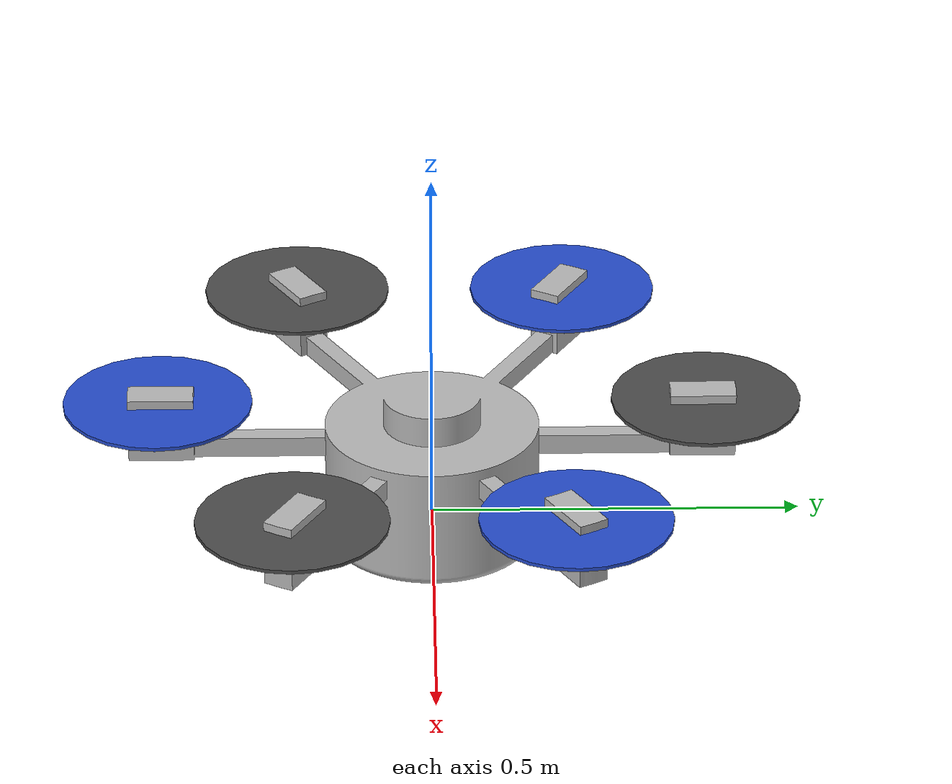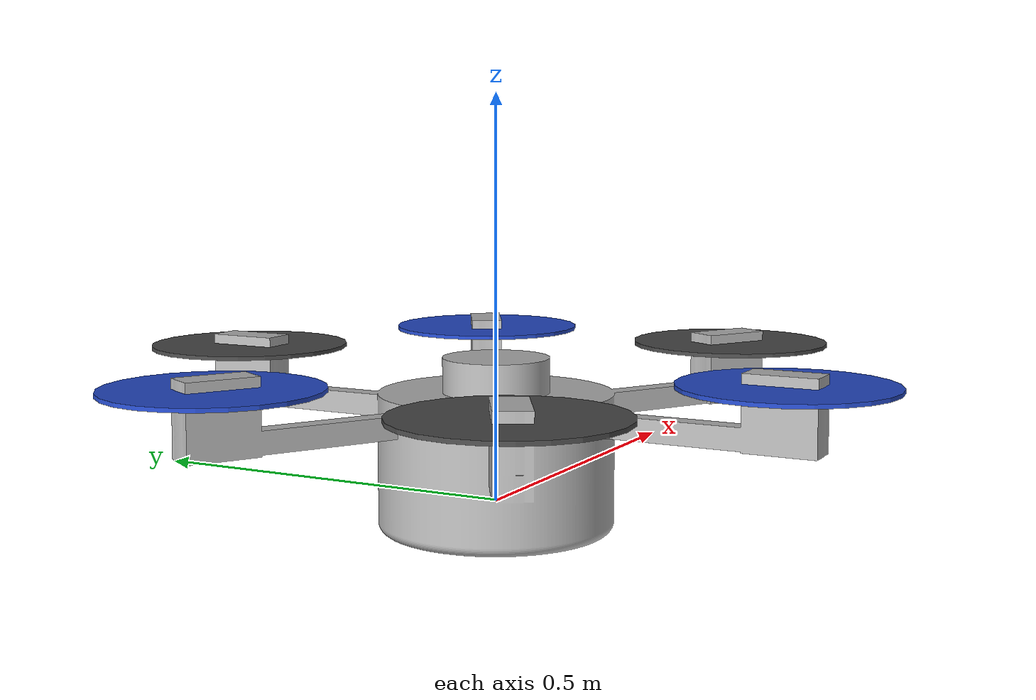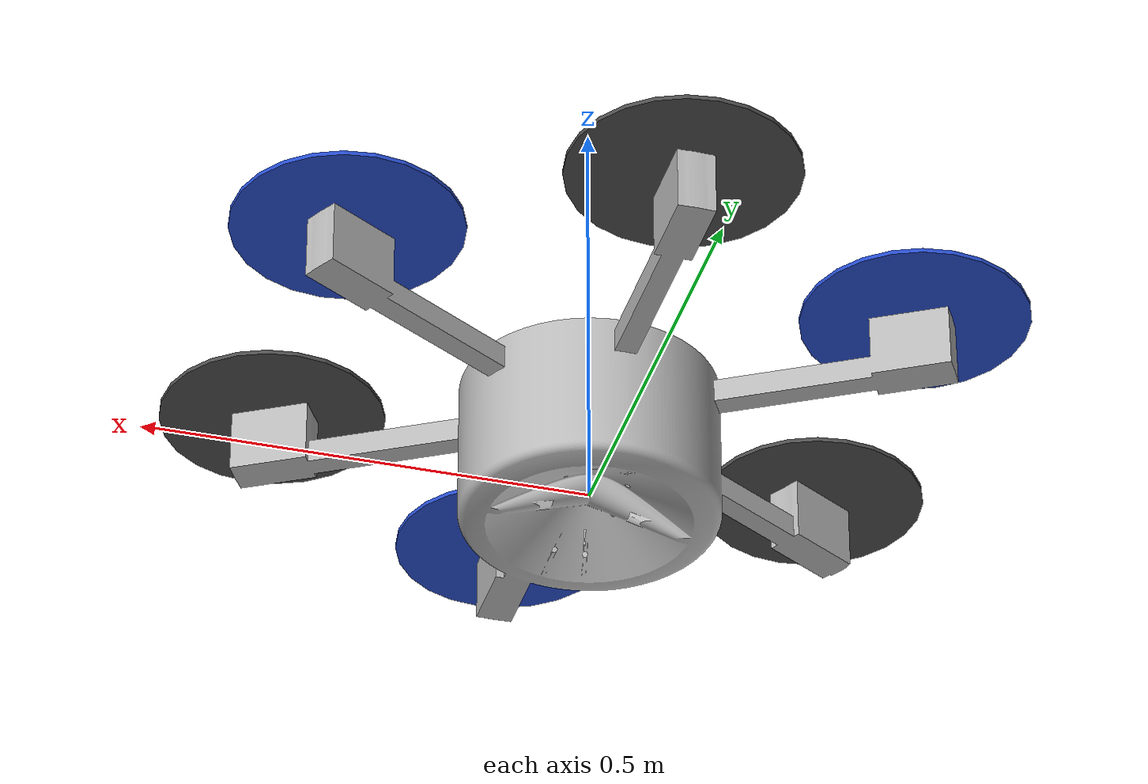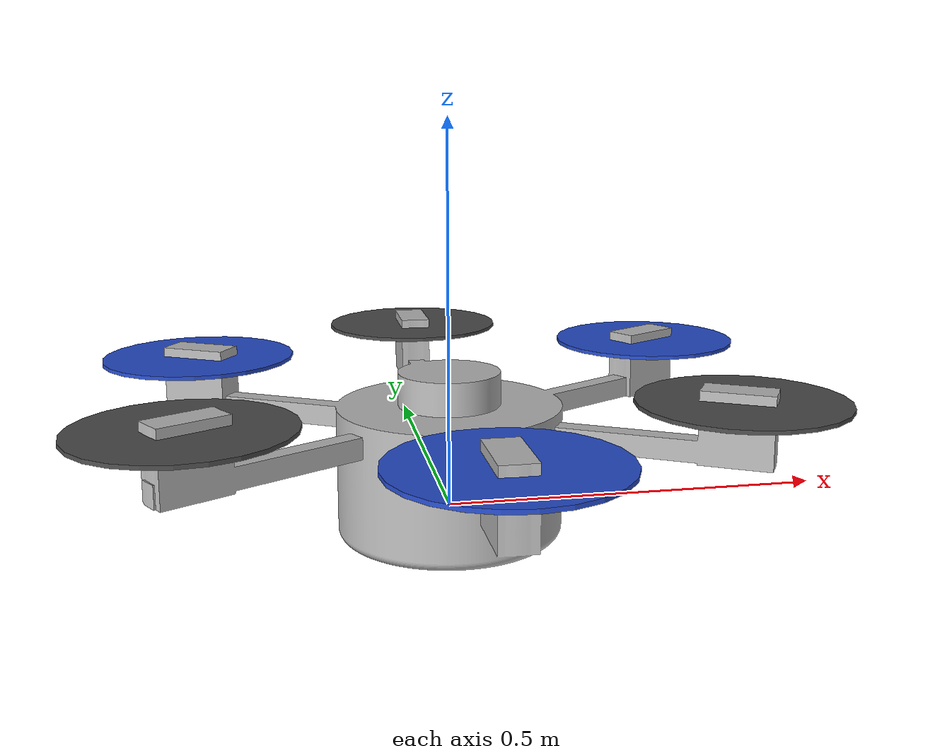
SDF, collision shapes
<?xml version='1.0'?>
<sdf version='1.6'>
  <model name='sdu_drone_mono_cam'>
    <!-- SDU Drone body -->
    <link name='base_link'>
      <pose>0 0 0 0 -0 0</pose>
      <inertial>
        <pose>0 0 0 0 -0 0</pose>
        <mass>1.5</mass>
        <inertia>
          <ixx>0.0762625</ixx>
          <ixy>0</ixy>
          <ixz>0</ixz>
          <iyy>0.0762625</iyy>
          <iyz>0</iyz>
          <izz>0.1369</izz>
        </inertia>
      </inertial>
      <collision name='base_link_inertia_collision'>
        <pose>0 0 -0.040 0 -0 0</pose>
        <geometry>
          <mesh>
            <scale>1 1 1</scale>
            <uri>model://sdu_description/meshes/sdu_drone_collision.dae</uri>
          </mesh>

        </geometry>
        <surface>
          <contact>
            <ode>
              <min_depth>0.001</min_depth>
              <max_vel>0</max_vel>
            </ode>
          </contact>
          <friction>
            <ode/>
          </friction>
        </surface>
      </collision>
      <visual name='base_link_inertia_visual'>
        <pose>0 0 0.125 0 0 0</pose>
        <geometry>
          <mesh>
            <scale>1 1 1</scale>
            <uri>model://sdu_description/meshes/sdu_drone.dae</uri>
          </mesh>
        </geometry>
      </visual>
      <gravity>1</gravity>
      <velocity_decay/>
    </link>
    <link name='/imu_link'>
      <pose>0 0 0 0 -0 0</pose>
      <inertial>
        <pose>0 0 0 0 -0 0</pose>
        <mass>0.015</mass>
        <inertia>
          <ixx>1e-05</ixx>
          <ixy>0</ixy>
          <ixz>0</ixz>
          <iyy>1e-05</iyy>
          <iyz>0</iyz>
          <izz>1e-05</izz>
        </inertia>
      </inertial>
    </link>
    <joint name='/imu_joint' type='revolute'>
      <child>/imu_link</child>
      <parent>base_link</parent>
      <axis>
        <xyz>1 0 0</xyz>
        <limit>
          <lower>0</lower>
          <upper>0</upper>
          <effort>0</effort>
          <velocity>0</velocity>
        </limit>
        <dynamics>
          <spring_reference>0</spring_reference>
          <spring_stiffness>0</spring_stiffness>
        </dynamics>
        <use_parent_model_frame>1</use_parent_model_frame>
      </axis>
    </joint>

    <!-- Rotor 0 (CW) -->
    <link name='rotor_0'>
      <pose>0.0 -0.37 0.170 0 -0 0</pose>
      <inertial>
        <pose>0 0 0 0 -0 0</pose>
        <mass>0.005</mass>
        <inertia>
          <ixx>9.75e-07</ixx>
          <ixy>0</ixy>
          <ixz>0</ixz>
          <iyy>0.000273104</iyy>
          <iyz>0</iyz>
          <izz>0.000274004</izz>
        </inertia>
      </inertial>
      <collision name='rotor_0_collision'>
        <pose>0 0 0 0 -0 0</pose>
        <geometry>
          <cylinder>
            <length>0.005</length>
            <radius>0.128</radius>
          </cylinder>
        </geometry>
        <surface>
          <contact>
            <ode/>
          </contact>
          <friction>
            <ode/>
          </friction>
        </surface>
      </collision>
      <visual name='rotor_0_visual'>
        <pose>0 0 0 0 -0 0</pose>
        <geometry>
          <mesh>
            <scale>1.5 1.5 1.5</scale>
            <uri>model://sdu_description/meshes/prop_cw.dae</uri>
          </mesh>
        </geometry>
        <material>
          <script>
            <name>Gazebo/Blue</name>
            <uri>file://media/materials/scripts/gazebo.material</uri>
          </script>
        </material>
      </visual>
      <gravity>1</gravity>
      <velocity_decay/>
    </link>
    <joint name='rotor_0_joint' type='revolute'>
      <child>rotor_0</child>
      <parent>base_link</parent>
      <axis>
        <xyz>0 0 1</xyz>
        <limit>
          <lower>-1e+16</lower>
          <upper>1e+16</upper>
        </limit>
        <dynamics>
          <spring_reference>0</spring_reference>
          <spring_stiffness>0</spring_stiffness>
        </dynamics>
        <use_parent_model_frame>1</use_parent_model_frame>
      </axis>
    </joint>

    <!-- Rotor 1 (CCW) -->
    <link name='rotor_1'>
      <pose>0 0.37 0.170 0 -0 0</pose>
      <inertial>
        <pose>0 0 0 0 -0 0</pose>
        <mass>0.005</mass>
        <inertia>
          <ixx>9.75e-07</ixx>
          <ixy>0</ixy>
          <ixz>0</ixz>
          <iyy>0.000273104</iyy>
          <iyz>0</iyz>
          <izz>0.000274004</izz>
        </inertia>
      </inertial>
      <collision name='rotor_1_collision'>
        <pose>0 0 0 0 -0 0</pose>
        <geometry>
          <cylinder>
            <length>0.005</length>
            <radius>0.128</radius>
          </cylinder>
        </geometry>
        <surface>
          <contact>
            <ode/>
          </contact>
          <friction>
            <ode/>
          </friction>
        </surface>
      </collision>
      <visual name='rotor_1_visual'>
        <pose>0 0 0 0 -0 0</pose>
        <geometry>
          <mesh>
            <scale>1.5 1.5 1.5</scale>
            <uri>model://sdu_description/meshes/prop_ccw.dae</uri>
          </mesh>
        </geometry>
        <material>
          <script>
            <name>Gazebo/DarkGrey</name>
            <uri>file://media/materials/scripts/gazebo.material</uri>
          </script>
        </material>
      </visual>
      <gravity>1</gravity>
      <velocity_decay/>
    </link>
    <joint name='rotor_1_joint' type='revolute'>
      <child>rotor_1</child>
      <parent>base_link</parent>
      <axis>
        <xyz>0 0 1</xyz>
        <limit>
          <lower>-1e+16</lower>
          <upper>1e+16</upper>
        </limit>
        <dynamics>
          <spring_reference>0</spring_reference>
          <spring_stiffness>0</spring_stiffness>
        </dynamics>
        <use_parent_model_frame>1</use_parent_model_frame>
      </axis>
    </joint>

    <!-- Rotor 2 (CW) -->
    <link name='rotor_2'>
      <pose>0.320429 0.185000 0.170 0 -0 0</pose>
      <inertial>
        <pose>0 0 0 0 -0 0</pose>
        <mass>0.005</mass>
        <inertia>
          <ixx>9.75e-07</ixx>
          <ixy>0</ixy>
          <ixz>0</ixz>
          <iyy>0.000273104</iyy>
          <iyz>0</iyz>
          <izz>0.000274004</izz>
        </inertia>
      </inertial>
      <collision name='rotor_2_collision'>
        <pose>0 0 0 0 -0 0</pose>
        <geometry>
          <cylinder>
            <length>0.005</length>
            <radius>0.128</radius>
          </cylinder>
        </geometry>
        <surface>
          <contact>
            <ode/>
          </contact>
          <friction>
            <ode/>
          </friction>
        </surface>
      </collision>
      <visual name='rotor_2_visual'>
        <pose>0 0 0 0 -0 0</pose>
        <geometry>
          <mesh>
            <scale>1.5 1.5 1.5</scale>
            <uri>model://sdu_description/meshes/prop_cw.dae</uri>
          </mesh>
        </geometry>
        <material>
          <script>
            <name>Gazebo/Blue</name>
            <uri>file://media/materials/scripts/gazebo.material</uri>
          </script>
        </material>
      </visual>
      <gravity>1</gravity>
      <velocity_decay/>
    </link>
    <joint name='rotor_2_joint' type='revolute'>
      <child>rotor_2</child>
      <parent>base_link</parent>
      <axis>
        <xyz>0 0 1</xyz>
        <limit>
          <lower>-1e+16</lower>
          <upper>1e+16</upper>
        </limit>
        <dynamics>
          <spring_reference>0</spring_reference>
          <spring_stiffness>0</spring_stiffness>
        </dynamics>
        <use_parent_model_frame>1</use_parent_model_frame>
      </axis>
    </joint>

    <!-- Rotor 3 (CW) -->
    <link name='rotor_3'>
      <pose>-0.320429 -0.185000 0.170 0 -0 0</pose>
      <inertial>
        <pose>0 0 0 0 -0 0</pose>
        <mass>0.005</mass>
        <inertia>
          <ixx>9.75e-07</ixx>
          <ixy>0</ixy>
          <ixz>0</ixz>
          <iyy>0.000273104</iyy>
          <iyz>0</iyz>
          <izz>0.000274004</izz>
        </inertia>
      </inertial>
      <collision name='rotor_3_collision'>
        <pose>0 0 0 0 -0 0</pose>
        <geometry>
          <cylinder>
            <length>0.005</length>
            <radius>0.128</radius>
          </cylinder>
        </geometry>
        <surface>
          <contact>
            <ode/>
          </contact>
          <friction>
            <ode/>
          </friction>
        </surface>
      </collision>
      <visual name='rotor_3_visual'>
        <pose>0 0 0 0 -0 0</pose>
        <geometry>
          <mesh>
            <scale>1.5 1.5 1.5</scale>
            <uri>model://sdu_description/meshes/prop_ccw.dae</uri>
          </mesh>
        </geometry>
        <material>
          <script>
            <name>Gazebo/DarkGrey</name>
            <uri>file://media/materials/scripts/gazebo.material</uri>
          </script>
        </material>
      </visual>
      <gravity>1</gravity>
      <velocity_decay/>
    </link>
    <joint name='rotor_3_joint' type='revolute'>
      <child>rotor_3</child>
      <parent>base_link</parent>
      <axis>
        <xyz>0 0 1</xyz>
        <limit>
          <lower>-1e+16</lower>
          <upper>1e+16</upper>
        </limit>
        <dynamics>
          <spring_reference>0</spring_reference>
          <spring_stiffness>0</spring_stiffness>
        </dynamics>
        <use_parent_model_frame>1</use_parent_model_frame>
      </axis>
    </joint>

    <!-- Rotor 4 (CW) -->
    <link name='rotor_4'>
      <pose>0.320429 -0.185000 0.170 0 -0 0</pose>
      <inertial>
        <pose>0 0 0 0 -0 0</pose>
        <mass>0.005</mass>
        <inertia>
          <ixx>9.75e-07</ixx>
          <ixy>0</ixy>
          <ixz>0</ixz>
          <iyy>0.000273104</iyy>
          <iyz>0</iyz>
          <izz>0.000274004</izz>
        </inertia>
      </inertial>
      <collision name='rotor_4_collision'>
        <pose>0 0 0 0 -0 0</pose>
        <geometry>
          <cylinder>
            <length>0.005</length>
            <radius>0.128</radius>
          </cylinder>
        </geometry>
        <surface>
          <contact>
            <ode/>
          </contact>
          <friction>
            <ode/>
          </friction>
        </surface>
      </collision>
      <visual name='rotor_4_visual'>
        <pose>0 0 0 0 -0 0</pose>
        <geometry>
          <mesh>
            <scale>1.5 1.5 1.5</scale>
            <uri>model://sdu_description/meshes/prop_ccw.dae</uri>
          </mesh>
        </geometry>
        <material>
          <script>
            <name>Gazebo/DarkGrey</name>
            <uri>file://media/materials/scripts/gazebo.material</uri>
          </script>
        </material>
      </visual>
      <gravity>1</gravity>
      <velocity_decay/>
    </link>
    <joint name='rotor_4_joint' type='revolute'>
      <child>rotor_4</child>
      <parent>base_link</parent>
      <axis>
        <xyz>0 0 1</xyz>
        <limit>
          <lower>-1e+16</lower>
          <upper>1e+16</upper>
        </limit>
        <dynamics>
          <spring_reference>0</spring_reference>
          <spring_stiffness>0</spring_stiffness>
        </dynamics>
        <use_parent_model_frame>1</use_parent_model_frame>
      </axis>
    </joint>

    <!-- Rotor 5 (CCW) -->
    <link name='rotor_5'>
      <pose>-0.320429 0.185000 0.170 0 -0 0</pose>
      <inertial>
        <pose>0 0 0 0 -0 0</pose>
        <mass>0.005</mass>
        <inertia>
          <ixx>9.75e-07</ixx>
          <ixy>0</ixy>
          <ixz>0</ixz>
          <iyy>0.000273104</iyy>
          <iyz>0</iyz>
          <izz>0.000274004</izz>
        </inertia>
      </inertial>
      <collision name='rotor_5_collision'>
        <pose>0 0 0 0 -0 0</pose>
        <geometry>
          <cylinder>
            <length>0.005</length>
            <radius>0.128</radius>
          </cylinder>
        </geometry>
        <surface>
          <contact>
            <ode/>
          </contact>
          <friction>
            <ode/>
          </friction>
        </surface>
      </collision>
      <visual name='rotor_5_visual'>
        <pose>0 0 0 0 -0 0</pose>
        <geometry>
          <mesh>
            <scale>1.5 1.5 1.5</scale>
            <uri>model://sdu_description/meshes/prop_cw.dae</uri>
          </mesh>
        </geometry>
        <material>
          <script>
            <name>Gazebo/Blue</name>
            <uri>file://media/materials/scripts/gazebo.material</uri>
          </script>
        </material>
      </visual>
      <gravity>1</gravity>
      <velocity_decay/>
    </link>
    <joint name='rotor_5_joint' type='revolute'>
      <child>rotor_5</child>
      <parent>base_link</parent>
      <axis>
        <xyz>0 0 1</xyz>
        <limit>
          <lower>-1e+16</lower>
          <upper>1e+16</upper>
        </limit>
        <dynamics>
          <spring_reference>0</spring_reference>
          <spring_stiffness>0</spring_stiffness>
        </dynamics>
        <use_parent_model_frame>1</use_parent_model_frame>
      </axis>
    </joint>

    <plugin name='rosbag' filename='libgazebo_multirotor_base_plugin.so'>
      <robotNamespace/>
      <linkName>base_link</linkName>
      <rotorVelocitySlowdownSim>10</rotorVelocitySlowdownSim>
    </plugin>

        <plugin name='motor_model_0' filename='libgazebo_motor_model.so'>
          <robotNamespace/>
          <jointName>rotor_0_joint</jointName>
          <linkName>rotor_0</linkName>
          <turningDirection>cw</turningDirection>
          <timeConstantUp>0.0125</timeConstantUp>
          <timeConstantDown>0.025</timeConstantDown>
          <maxRotVelocity>1100</maxRotVelocity>
          <motorConstant>8.54858e-06</motorConstant>
          <momentConstant>0.06</momentConstant>
          <commandSubTopic>/gazebo/command/motor_speed</commandSubTopic>
          <motorNumber>0</motorNumber>
          <rotorDragCoefficient>0.000806428</rotorDragCoefficient>
          <rollingMomentCoefficient>1e-06</rollingMomentCoefficient>
          <motorSpeedPubTopic>/motor_speed/0</motorSpeedPubTopic>
          <rotorVelocitySlowdownSim>10</rotorVelocitySlowdownSim>
        </plugin>
        <plugin name='motor_model_1' filename='libgazebo_motor_model.so'>
          <robotNamespace/>
          <jointName>rotor_1_joint</jointName>
          <linkName>rotor_1</linkName>
          <turningDirection>ccw</turningDirection>
          <timeConstantUp>0.0125</timeConstantUp>
          <timeConstantDown>0.025</timeConstantDown>
          <maxRotVelocity>1100</maxRotVelocity>
          <motorConstant>8.54858e-06</motorConstant>
          <momentConstant>0.06</momentConstant>
          <commandSubTopic>/gazebo/command/motor_speed</commandSubTopic>
          <motorNumber>1</motorNumber>
          <rotorDragCoefficient>0.000806428</rotorDragCoefficient>
          <rollingMomentCoefficient>1e-06</rollingMomentCoefficient>
          <motorSpeedPubTopic>/motor_speed/1</motorSpeedPubTopic>
          <rotorVelocitySlowdownSim>10</rotorVelocitySlowdownSim>
        </plugin>
        <plugin name='motor_model_2' filename='libgazebo_motor_model.so'>
          <robotNamespace/>
          <jointName>rotor_2_joint</jointName>
          <linkName>rotor_2</linkName>
          <turningDirection>cw</turningDirection>
          <timeConstantUp>0.0125</timeConstantUp>
          <timeConstantDown>0.025</timeConstantDown>
          <maxRotVelocity>1100</maxRotVelocity>
          <motorConstant>8.54858e-06</motorConstant>
          <momentConstant>0.06</momentConstant>
          <commandSubTopic>/gazebo/command/motor_speed</commandSubTopic>
          <motorNumber>2</motorNumber>
          <rotorDragCoefficient>0.000806428</rotorDragCoefficient>
          <rollingMomentCoefficient>1e-06</rollingMomentCoefficient>
          <motorSpeedPubTopic>/motor_speed/2</motorSpeedPubTopic>
          <rotorVelocitySlowdownSim>10</rotorVelocitySlowdownSim>
        </plugin>
        <plugin name='motor_model_3' filename='libgazebo_motor_model.so'>
          <robotNamespace/>
          <jointName>rotor_3_joint</jointName>
          <linkName>rotor_3</linkName>
          <turningDirection>ccw</turningDirection>
          <timeConstantUp>0.0125</timeConstantUp>
          <timeConstantDown>0.025</timeConstantDown>
          <maxRotVelocity>1100</maxRotVelocity>
          <motorConstant>8.54858e-06</motorConstant>
          <momentConstant>0.06</momentConstant>
          <commandSubTopic>/gazebo/command/motor_speed</commandSubTopic>
          <motorNumber>3</motorNumber>
          <rotorDragCoefficient>0.000806428</rotorDragCoefficient>
          <rollingMomentCoefficient>1e-06</rollingMomentCoefficient>
          <motorSpeedPubTopic>/motor_speed/3</motorSpeedPubTopic>
          <rotorVelocitySlowdownSim>10</rotorVelocitySlowdownSim>
        </plugin>
        <plugin name='motor_model_4' filename='libgazebo_motor_model.so'>
          <robotNamespace/>
          <jointName>rotor_4_joint</jointName>
          <linkName>rotor_4</linkName>
          <turningDirection>ccw</turningDirection>
          <timeConstantUp>0.0125</timeConstantUp>
          <timeConstantDown>0.025</timeConstantDown>
          <maxRotVelocity>1100</maxRotVelocity>
          <motorConstant>8.54858e-06</motorConstant>
          <momentConstant>0.06</momentConstant>
          <commandSubTopic>/gazebo/command/motor_speed</commandSubTopic>
          <motorNumber>4</motorNumber>
          <rotorDragCoefficient>0.000806428</rotorDragCoefficient>
          <rollingMomentCoefficient>1e-06</rollingMomentCoefficient>
          <motorSpeedPubTopic>/motor_speed/3</motorSpeedPubTopic>
          <rotorVelocitySlowdownSim>10</rotorVelocitySlowdownSim>
        </plugin>
        <plugin name='motor_model_5' filename='libgazebo_motor_model.so'>
          <robotNamespace/>
          <jointName>rotor_5_joint</jointName>
          <linkName>rotor_5</linkName>
          <turningDirection>cw</turningDirection>
          <timeConstantUp>0.0125</timeConstantUp>
          <timeConstantDown>0.025</timeConstantDown>
          <maxRotVelocity>1100</maxRotVelocity>
          <motorConstant>8.54858e-06</motorConstant>
          <momentConstant>0.06</momentConstant>
          <commandSubTopic>/gazebo/command/motor_speed</commandSubTopic>
          <motorNumber>5</motorNumber>
          <rotorDragCoefficient>0.000806428</rotorDragCoefficient>
          <rollingMomentCoefficient>1e-06</rollingMomentCoefficient>
          <motorSpeedPubTopic>/motor_speed/3</motorSpeedPubTopic>
          <rotorVelocitySlowdownSim>10</rotorVelocitySlowdownSim>
        </plugin>

    <model name='gps0'>
      <link name='link'>
        <pose>0 0 0.125 0 -0 0</pose>
        <inertial>
          <pose>0 0 0 0 -0 0</pose>
          <mass>0.01</mass>
          <inertia>
            <ixx>2.1733e-06</ixx>
            <ixy>0</ixy>
            <ixz>0</ixz>
            <iyy>2.1733e-06</iyy>
            <iyz>0</iyz>
            <izz>1.8e-07</izz>
          </inertia>
        </inertial>
        <visual name='visual'>
          <geometry>
            <cylinder>
              <radius>0.01</radius>
              <length>0.002</length>
            </cylinder>
          </geometry>
          <material>
            <script>
              <name>Gazebo/Black</name>
              <uri>__default__</uri>
            </script>
          </material>
        </visual>
        <sensor name='gps' type='gps'>
          <pose>0 0 0 0 -0 0</pose>
          <plugin name='gps_plugin' filename='libgazebo_gps_plugin.so'>
            <robotNamespace/>
            <gpsNoise>1</gpsNoise>
            <gpsXYRandomWalk>2.0</gpsXYRandomWalk>
            <gpsZRandomWalk>4.0</gpsZRandomWalk>
            <gpsXYNoiseDensity>0.0002</gpsXYNoiseDensity>
            <gpsZNoiseDensity>0.0004</gpsZNoiseDensity>
            <gpsVXYNoiseDensity>0.2</gpsVXYNoiseDensity>
            <gpsVZNoiseDensity>0.4</gpsVZNoiseDensity>
          </plugin>
        </sensor>
      </link>
    </model>
    <joint name='gps0_joint' type='fixed'>
      <parent>base_link</parent>
      <child>gps0::link</child>
    </joint>
    <plugin name='groundtruth_plugin' filename='libgazebo_groundtruth_plugin.so'>
      <robotNamespace/>
    </plugin>
    <plugin name='magnetometer_plugin' filename='libgazebo_magnetometer_plugin.so'>
      <robotNamespace/>
      <pubRate>20</pubRate>
      <noiseDensity>0.0004</noiseDensity>
      <randomWalk>6.4e-06</randomWalk>
      <biasCorrelationTime>600</biasCorrelationTime>
      <magTopic>/mag</magTopic>
    </plugin>
    <plugin name='barometer_plugin' filename='libgazebo_barometer_plugin.so'>
      <robotNamespace/>
      <pubRate>10</pubRate>
      <baroTopic>/baro</baroTopic>
    </plugin>

    <plugin name='parachute_plugin' filename='libgazebo_parachute_plugin.so'>
      <robotNamespace/>
      <commandSubTopic>/gazebo/command/motor_speed</commandSubTopic>
      <motorNumber>6</motorNumber>
    </plugin>

    <plugin name='mavlink_interface' filename='libgazebo_mavlink_interface.so'>
      <robotNamespace></robotNamespace>
      <imuSubTopic>/imu</imuSubTopic>
      <magSubTopic>/mag</magSubTopic>
      <baroSubTopic>/baro</baroSubTopic>
      <mavlink_addr>INADDR_ANY</mavlink_addr>
      <mavlink_udp_port>14560</mavlink_udp_port>
      <mavlink_tcp_port>4560</mavlink_tcp_port>
      <serialEnabled>false</serialEnabled>
      <serialDevice>/dev/ttyACM0</serialDevice>
      <baudRate>921600</baudRate>
      <qgc_addr>INADDR_ANY</qgc_addr>
      <qgc_udp_port>14550</qgc_udp_port>
      <sdk_addr>INADDR_ANY</sdk_addr>
      <sdk_udp_port>14540</sdk_udp_port>
      <hil_mode>0</hil_mode>
      <hil_state_level>0</hil_state_level>
      <vehicle_is_tailsitter>0</vehicle_is_tailsitter>
      <send_vision_estimation>1</send_vision_estimation>
      <send_odometry>0</send_odometry>
      <enable_lockstep>1</enable_lockstep>
      <use_tcp>1</use_tcp>
      <motorSpeedCommandPubTopic>/gazebo/command/motor_speed</motorSpeedCommandPubTopic>
      <control_channels>
        <channel name="rotor0">
          <input_index>0</input_index>
          <input_offset>0</input_offset>
          <input_scaling>1500</input_scaling>
          <zero_position_disarmed>0</zero_position_disarmed>
          <zero_position_armed>100</zero_position_armed>
          <joint_control_type>velocity</joint_control_type>
          <joint_name>rotor_0_joint</joint_name>
        </channel>
        <channel name="rotor1">
          <input_index>1</input_index>
          <input_offset>0</input_offset>
          <input_scaling>1500</input_scaling>
          <zero_position_disarmed>0</zero_position_disarmed>
          <zero_position_armed>100</zero_position_armed>
          <joint_control_type>velocity</joint_control_type>
          <joint_name>rotor_1_joint</joint_name>
        </channel>
        <channel name="rotor2">
          <input_index>2</input_index>
          <input_offset>0</input_offset>
          <input_scaling>1500</input_scaling>
          <zero_position_disarmed>0</zero_position_disarmed>
          <zero_position_armed>100</zero_position_armed>
          <joint_control_type>velocity</joint_control_type>
          <joint_name>rotor_2_joint</joint_name>
        </channel>
        <channel name="rotor3">
          <input_index>3</input_index>
          <input_offset>0</input_offset>
          <input_scaling>1500</input_scaling>
          <zero_position_disarmed>0</zero_position_disarmed>
          <zero_position_armed>100</zero_position_armed>
          <joint_control_type>velocity</joint_control_type>
          <joint_name>rotor_3_joint</joint_name>
        </channel>
        <channel name="rotor4">
          <input_index>4</input_index>
          <input_offset>0</input_offset>
          <input_scaling>1500</input_scaling>
          <zero_position_disarmed>0</zero_position_disarmed>
          <zero_position_armed>100</zero_position_armed>
          <joint_control_type>velocity</joint_control_type>
          <joint_name>rotor_4_joint</joint_name>
        </channel>
        <channel name="rotor5">
          <input_index>5</input_index>
          <input_offset>0</input_offset>
          <input_scaling>1500</input_scaling>
          <zero_position_disarmed>0</zero_position_disarmed>
          <zero_position_armed>100</zero_position_armed>
          <joint_control_type>velocity</joint_control_type>
          <joint_name>rotor_5_joint</joint_name>
        </channel>
        <channel name='aux1'>
          <input_index>6</input_index>
          <input_offset>0</input_offset>
          <input_scaling>1000</input_scaling>
          <zero_position_disarmed>0</zero_position_disarmed>
          <zero_position_armed>100</zero_position_armed>
          <joint_control_type>velocity</joint_control_type>
        </channel>
      </control_channels>
    </plugin>
    <static>0</static>
    <plugin name='gazebo_imu_plugin' filename='libgazebo_imu_plugin.so'>
      <robotNamespace></robotNamespace>
      <linkName>/imu_link</linkName>
      <imuTopic>/imu</imuTopic>
      <gyroscopeNoiseDensity>0.0003394</gyroscopeNoiseDensity>
      <gyroscopeRandomWalk>3.8785e-05</gyroscopeRandomWalk>
      <gyroscopeBiasCorrelationTime>1000.0</gyroscopeBiasCorrelationTime>
      <gyroscopeTurnOnBiasSigma>0.0087</gyroscopeTurnOnBiasSigma>
      <accelerometerNoiseDensity>0.004</accelerometerNoiseDensity>
      <accelerometerRandomWalk>0.006</accelerometerRandomWalk>
      <accelerometerBiasCorrelationTime>300.0</accelerometerBiasCorrelationTime>
      <accelerometerTurnOnBiasSigma>0.196</accelerometerTurnOnBiasSigma>
    </plugin>

    <!-- Mono Camera sensor (Downward) -->
    <link name='sensor_link'>
    <pose>0 0.25 0.1 0 1.57 1.57</pose>
      <inertial>
        <mass>0.015</mass>
        <inertia>
          <ixx>4.15e-6</ixx>
        <ixy>0</ixy>
        <ixz>0</ixz>
        <iyy>2.407e-6</iyy>
        <iyz>0</iyz>
        <izz>2.407e-6</izz>
        </inertia>
      </inertial>
      <collision name='collision'>
        <geometry>
          <box>
            <size>0.01 0.01 0.01</size>
          </box>
        </geometry>
        <max_contacts>10</max_contacts>
        <surface>
          <contact>
            <ode/>
          </contact>
          <bounce/>
          <friction>
            <ode/>
          </friction>
        </surface>
      </collision>
      <visual name='visual'>
        <geometry>
          <box>
            <size>0.01 0.01 0.01</size>
          </box>
        </geometry>
      </visual>
      <sensor name='camera' type='camera'>
        <camera name='__default__'>
          <horizontal_fov>1.047</horizontal_fov>
          <image>
            <width>640</width>
            <height>480</height>
          </image>
          <clip>
            <near>0.1</near>
            <far>100</far>
          </clip>
          <lens>
            <type>custom</type>
            <custom_function>
              <c1>1.05</c1>
              <c2>4</c2>
              <f>1</f>
              <fun>tan</fun>
            </custom_function>
            <scale_to_hfov>1</scale_to_hfov>
            <cutoff_angle>3.1415</cutoff_angle>
            <env_texture_size>1080</env_texture_size>
          </lens>
        </camera>
        <always_on>1</always_on>
        <update_rate>30</update_rate>
        <visualize>1</visualize>
        <plugin name='camera_plugin' filename='libgazebo_ros_camera.so'>
          <alwaysOn>true</alwaysOn>
          <imageTopicName>image_raw</imageTopicName>
          <cameraInfoTopicName>camera_info</cameraInfoTopicName>
          <updateRate>30.0</updateRate>
          <cameraName>mono_cam</cameraName>
          <frameName>/robot_camera_link</frameName>
          <CxPrime>320.5</CxPrime>
          <Cx>320.5</Cx>
          <Cy>240.5</Cy>
          <hackBaseline>0</hackBaseline>
          <focalLength>277.191356</focalLength>
          <distortionK1>0.0</distortionK1>
          <distortionK2>0.0</distortionK2>
          <distortionK3>0.0</distortionK3>
          <distortionT1>0.0</distortionT1>
          <distortionT2>0.0</distortionT2>
        </plugin>
        <!-- GStreamer camera plugin (needs a lot of CPU! Consider lowering the
        camera image size) -->
        <plugin name="GstCameraPlugin" filename="libgazebo_gst_camera_plugin.so">
          <robotNamespace></robotNamespace>
          <udpHost>127.0.0.1</udpHost>
          <udpPort>5600</udpPort>
        </plugin>
      </sensor>
      <self_collide>0</self_collide>
      <kinematic>0</kinematic>
    </link>

    <joint name='sensor_joint' type='revolute'>
      <child>sensor_link</child>
      <parent>base_link</parent>
      <axis>
        <xyz>1 0 0</xyz>
        <limit>
          <lower>0</lower>
          <upper>0</upper>
          <effort>0</effort>
          <velocity>0</velocity>
        </limit>
        <dynamics>
          <spring_reference>0</spring_reference>
          <spring_stiffness>0</spring_stiffness>
        </dynamics>
        <use_parent_model_frame>1</use_parent_model_frame>
      </axis>
    </joint>

  </model>
</sdf>
